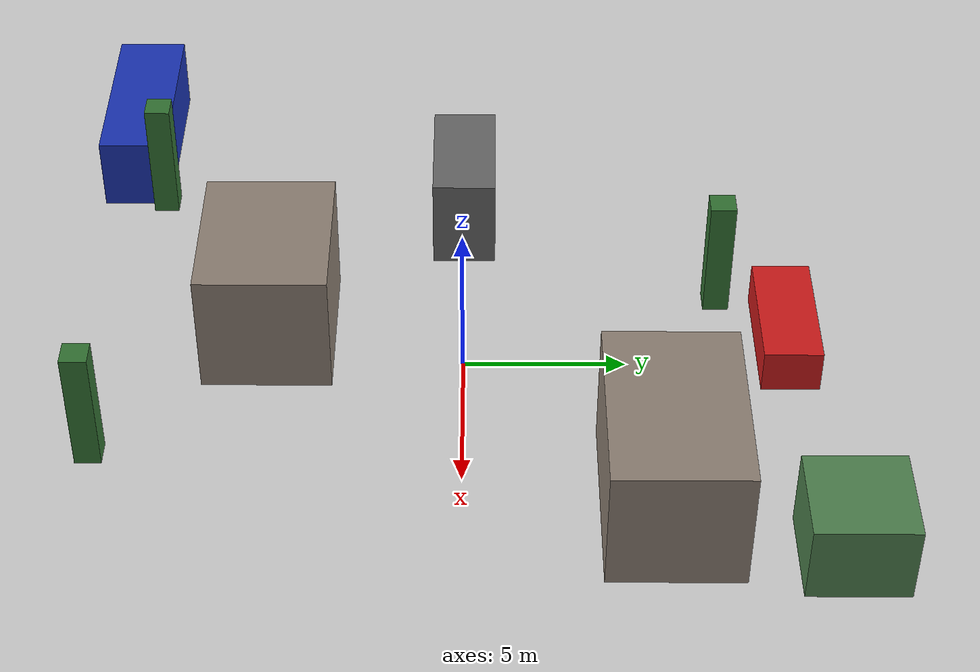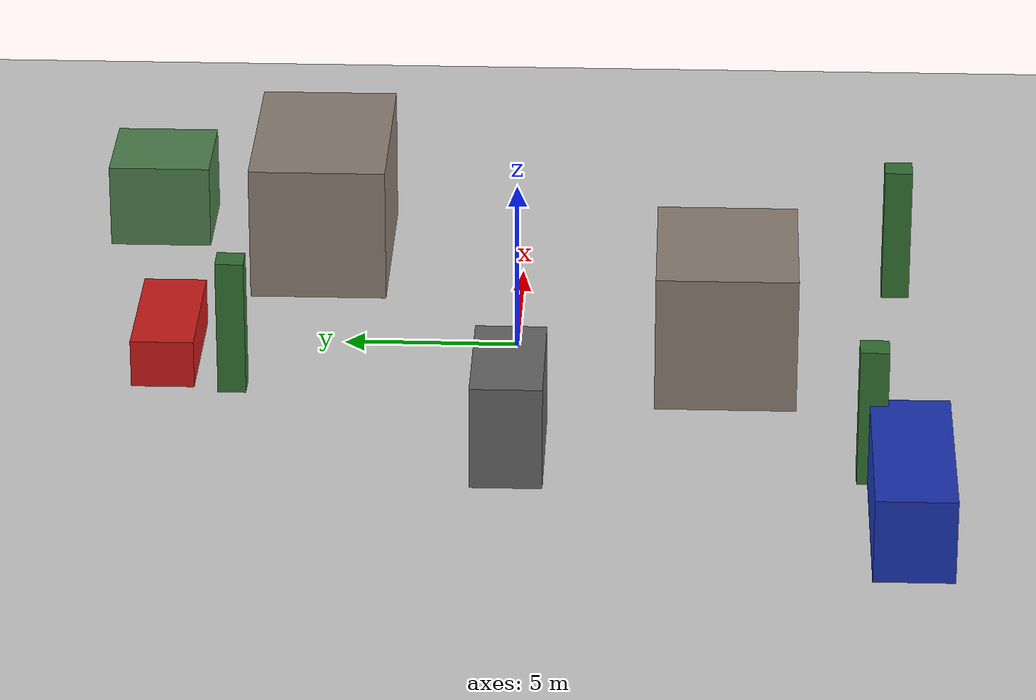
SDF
<sdf version="1.9">
 <world name="sage_hard_long">
  <physics type="ode">
   <max_step_size>0.004</max_step_size>
   <real_time_factor>1.0</real_time_factor>
   <real_time_update_rate>250</real_time_update_rate>
  </physics>
  <gravity>0 0 -9.8</gravity>
  <magnetic_field>6e-06 2.3e-05 -4.2e-05</magnetic_field>
  <atmosphere type="adiabatic"/>
  <scene>
   <grid>false</grid>
   <ambient>0.4 0.4 0.4 1</ambient>
   <background>0.7 0.7 0.7 1</background>
   <shadows>true</shadows>
  </scene>
  <model name="ground_plane">
   <static>true</static>
   <link name="link">
    <collision name="collision">
     <geometry><plane><normal>0 0 1</normal><size>1 1</size></plane></geometry>
    </collision>
    <visual name="visual">
     <geometry><plane><normal>0 0 1</normal><size>500 500</size></plane></geometry>
     <material>
      <ambient>0.8 0.8 0.8 1</ambient>
      <diffuse>0.8 0.8 0.8 1</diffuse>
      <specular>0.8 0.8 0.8 1</specular>
     </material>
    </visual>
    <inertial>
     <mass>1</mass>
     <inertia><ixx>1</ixx><ixy>0</ixy><ixz>0</ixz><iyy>1</iyy><iyz>0</iyz><izz>1</izz></inertia>
    </inertial>
   </link>
  </model>
  <light name="sunUTC" type="directional">
   <pose>0 0 500 0 -0 0</pose>
   <intensity>1</intensity>
   <direction>0.001 0.625 -0.78</direction>
   <diffuse>0.904 0.904 0.904 1</diffuse>
   <specular>0.271 0.271 0.271 1</specular>
   <attenuation><range>2000</range><linear>0</linear><constant>1</constant><quadratic>0</quadratic></attenuation>
   <spot><inner_angle>0</inner_angle><outer_angle>0</outer_angle><falloff>0</falloff></spot>
  </light>
  <spherical_coordinates>
   <surface_model>EARTH_WGS84</surface_model>
   <world_frame_orientation>ENU</world_frame_orientation>
   <latitude_deg>47.397971057728974</latitude_deg>
   <longitude_deg>8.546163739800146</longitude_deg>
   <elevation>0</elevation>
  </spherical_coordinates>
  <model name="building_1">
   <static>true</static>
   <pose>-1.5 -6.0 2.0 0 0 0</pose>
   <link name="l">
    <collision name="c"><geometry><box><size>5.0 4.0 4.0</size></box></geometry></collision>
    <visual name="v">
     <geometry><box><size>5.0 4.0 4.0</size></box></geometry>
     <material><ambient>0.55 0.5 0.45 1</ambient><diffuse>0.55 0.5 0.45 1</diffuse></material>
    </visual>
   </link>
  </model>
  <model name="building_2">
   <static>true</static>
   <pose>6.0 6.0 2.0 0 0 0</pose>
   <link name="l">
    <collision name="c"><geometry><box><size>6.0 4.0 4.0</size></box></geometry></collision>
    <visual name="v">
     <geometry><box><size>6.0 4.0 4.0</size></box></geometry>
     <material><ambient>0.55 0.5 0.45 1</ambient><diffuse>0.55 0.5 0.45 1</diffuse></material>
    </visual>
   </link>
  </model>
  <model name="wall">
   <static>true</static>
   <pose>-7.0 0.0 1.5 0 0 0</pose>
   <link name="l">
    <collision name="c"><geometry><box><size>4.0 2.0 3.0</size></box></geometry></collision>
    <visual name="v">
     <geometry><box><size>4.0 2.0 3.0</size></box></geometry>
     <material><ambient>0.4 0.4 0.4 1</ambient><diffuse>0.4 0.4 0.4 1</diffuse></material>
    </visual>
   </link>
  </model>
  <model name="tree_1">
   <static>true</static>
   <pose>-3.0 8.0 2.0 0 0 0</pose>
   <link name="l">
    <collision name="c">
     <geometry><box><size>0.7999999999999998 0.8000000000000007 4.0</size></box></geometry>
    </collision>
    <visual name="v">
     <geometry><box><size>0.7999999999999998 0.8000000000000007 4.0</size></box></geometry>
     <material><ambient>0.2 0.45 0.2 1</ambient><diffuse>0.2 0.45 0.2 1</diffuse></material>
    </visual>
   </link>
  </model>
  <model name="tree_2">
   <static>true</static>
   <pose>-8.0 -10.0 2.0 0 0 0</pose>
   <link name="l">
    <collision name="c">
     <geometry><box><size>0.8000000000000007 0.8000000000000007 4.0</size></box></geometry>
    </collision>
    <visual name="v">
     <geometry><box><size>0.8000000000000007 0.8000000000000007 4.0</size></box></geometry>
     <material><ambient>0.2 0.45 0.2 1</ambient><diffuse>0.2 0.45 0.2 1</diffuse></material>
    </visual>
   </link>
  </model>
  <model name="tree_3">
   <static>true</static>
   <pose>4.0 -11.0 2.0 0 0 0</pose>
   <link name="l">
    <collision name="c">
     <geometry><box><size>0.8000000000000003 0.8000000000000007 4.0</size></box></geometry>
    </collision>
    <visual name="v">
     <geometry><box><size>0.8000000000000003 0.8000000000000007 4.0</size></box></geometry>
     <material><ambient>0.2 0.45 0.2 1</ambient><diffuse>0.2 0.45 0.2 1</diffuse></material>
    </visual>
   </link>
  </model>
  <model name="car_red">
   <static>true</static>
   <pose>-1.0 10.0 0.7 0 0 0</pose>
   <link name="l">
    <visual name="v">
     <geometry><box><size>4.2 1.8 1.4</size></box></geometry>
     <material><ambient>0.8 0.1 0.1 1</ambient><diffuse>0.8 0.1 0.1 1</diffuse></material>
    </visual>
   </link>
  </model>
  <model name="truck_blue">
   <static>true</static>
   <pose>-11.0 -11.0 1.2 0 0 0</pose>
   <link name="l">
    <visual name="v">
     <geometry><box><size>6.0 2.2 2.4</size></box></geometry>
     <material><ambient>0.1 0.2 0.7 1</ambient><diffuse>0.1 0.2 0.7 1</diffuse></material>
    </visual>
   </link>
  </model>
  <model name="shed">
   <static>true</static>
   <pose>8.0 11.0 1.25 0 0 0</pose>
   <link name="l">
    <visual name="v">
     <geometry><box><size>3.0 3.0 2.5</size></box></geometry>
     <material><ambient>0.3 0.5 0.3 1</ambient><diffuse>0.3 0.5 0.3 1</diffuse></material>
    </visual>
   </link>
  </model>
 </world>
</sdf>
